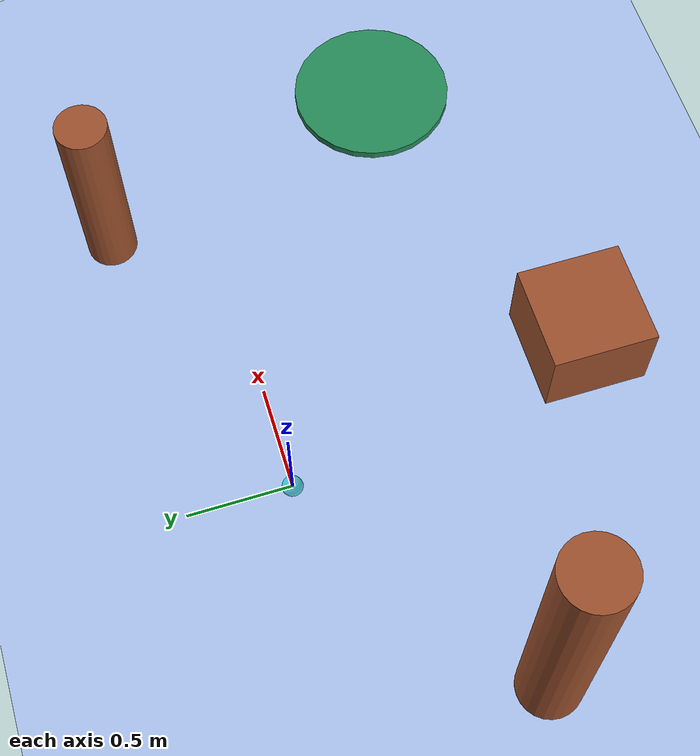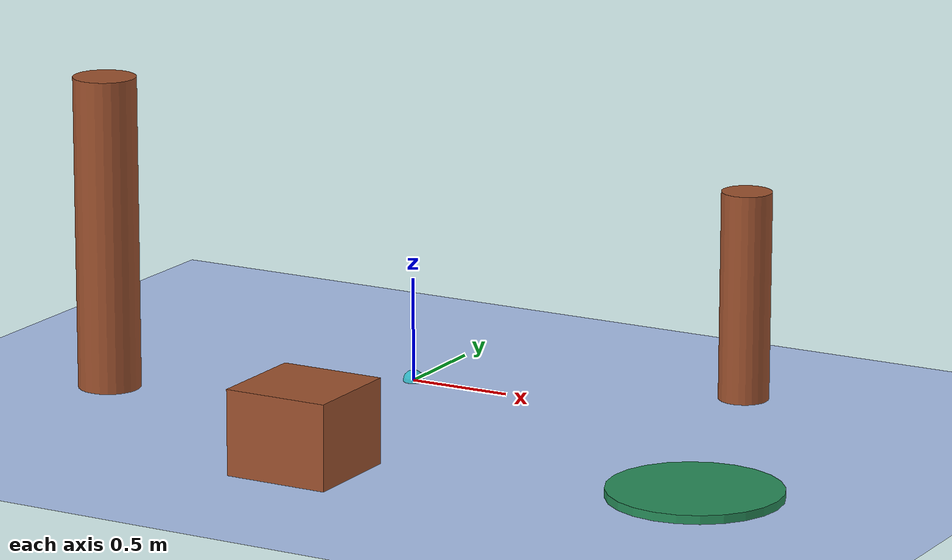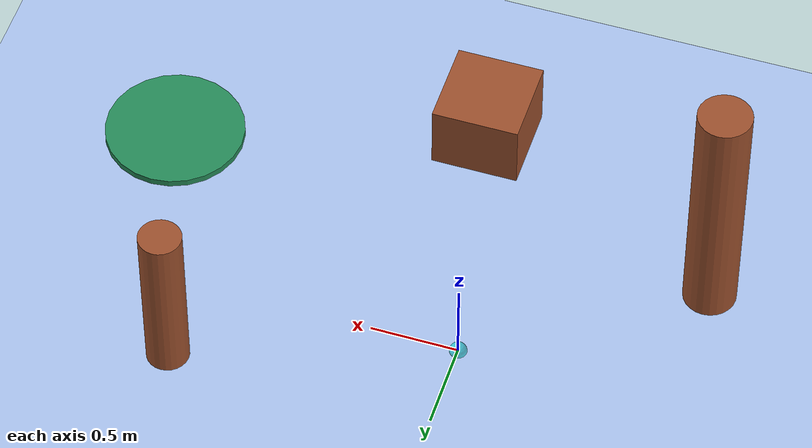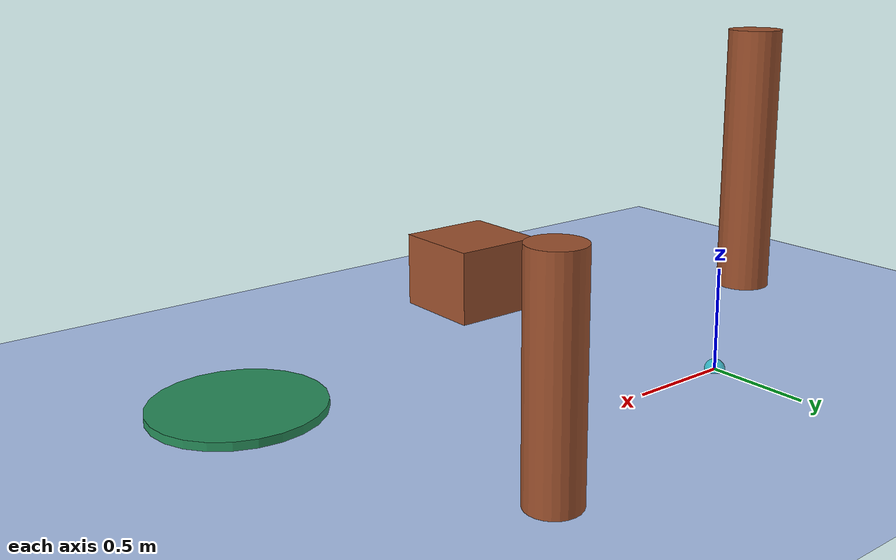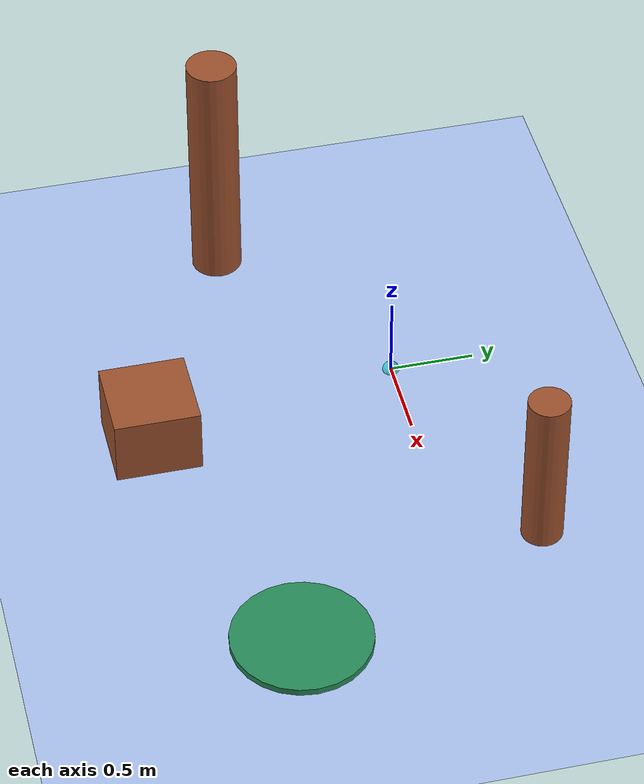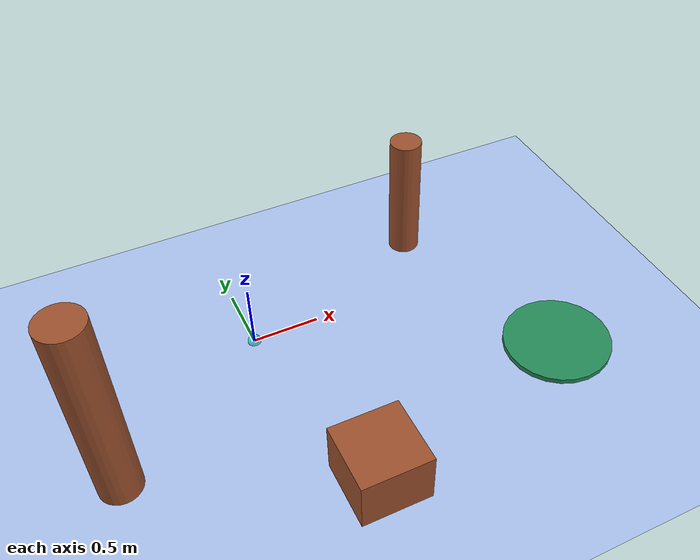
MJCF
<mujoco model="flight_field">
  <compiler angle="radian"/>
  <option timestep="0.001" gravity="0 0 -9.81"/>

  <asset>
    <texture name="ground_grid" type="2d" builtin="checker" width="512" height="512" rgb1="0.38 0.56 0.88" rgb2="0.97 0.98 1.00"/>
    <material name="ground_grid_mat" texture="ground_grid" texrepeat="10 10" texuniform="true" reflectance="0.08"/>
    <material name="obstacle_mat" rgba="0.62 0.32 0.18 1"/>
    <material name="pad_mat" rgba="0.15 0.55 0.35 1"/>
  </asset>

  <worldbody>
    <light pos="0 0 4"/>
    <geom name="floor" type="plane" size="10 10 0.02" material="ground_grid_mat"/>

    <!-- 机器人出生点（世界原点；机体自身 MJCF 内的 1.5 m 初始高度由其模型决定） -->
    <site name="uam_spawn" pos="0 0 0" size="0.05" rgba="0 0.8 0.8 0.6"/>

    <!-- 障碍物：两根立柱 + 一个箱子 -->
    <geom name="obstacle_pillar_a" type="cylinder" pos="1.5 0.5 0.5" size="0.12 0.5" material="obstacle_mat"/>
    <geom name="obstacle_pillar_b" type="cylinder" pos="-1.2 -0.8 0.75" size="0.15 0.75" material="obstacle_mat"/>
    <geom name="obstacle_box" type="box" pos="0.3 -1.5 0.2" size="0.25 0.25 0.2" material="obstacle_mat"/>

    <!-- 着陆台 -->
    <geom name="landing_pad" type="cylinder" pos="2.0 -1.0 0.02" size="0.4 0.02" material="pad_mat"/>
  </worldbody>
</mujoco>
